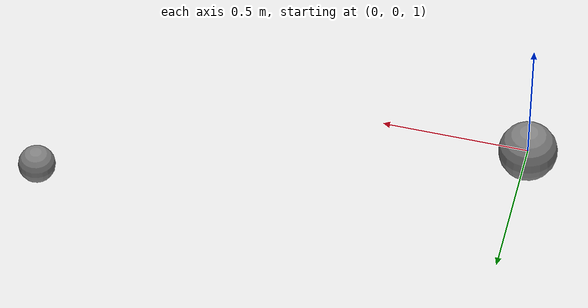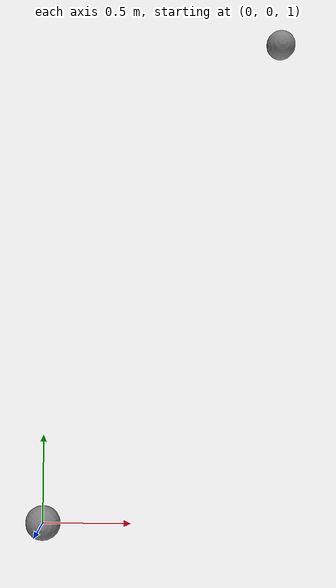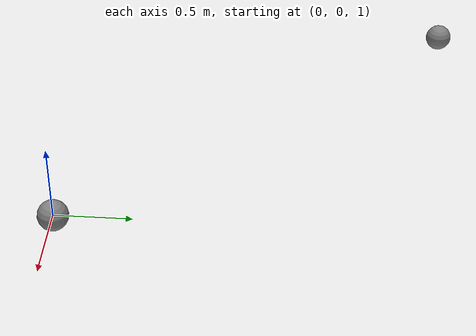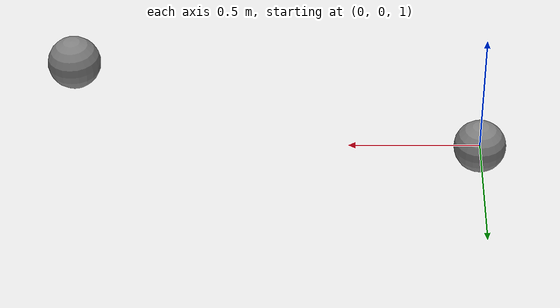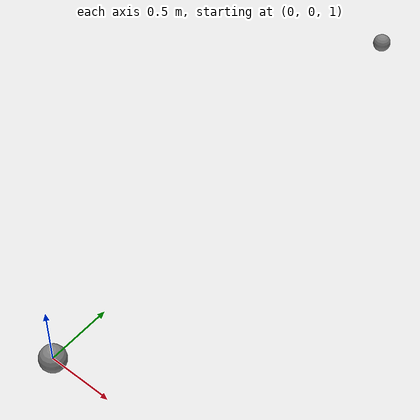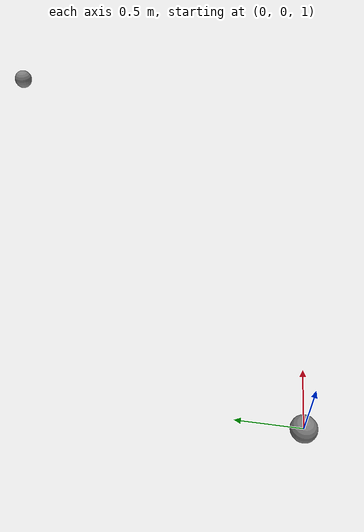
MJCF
<mujoco model="mocap_reset_test">
        <option gravity="0 0 -9.81" timestep="0.002"/>
        <worldbody>
            <body name="mocap_body" mocap="true" pos="1 2 3">
                <geom type="sphere" size="0.05" contype="0" conaffinity="0"/>
            </body>
            <body name="link" pos="0 0 1">
                <joint name="j" type="hinge" axis="0 1 0"/>
                <geom type="sphere" size="0.1" mass="1.0"
                      contype="0" conaffinity="0"/>
            </body>
        </worldbody>
    </mujoco>
